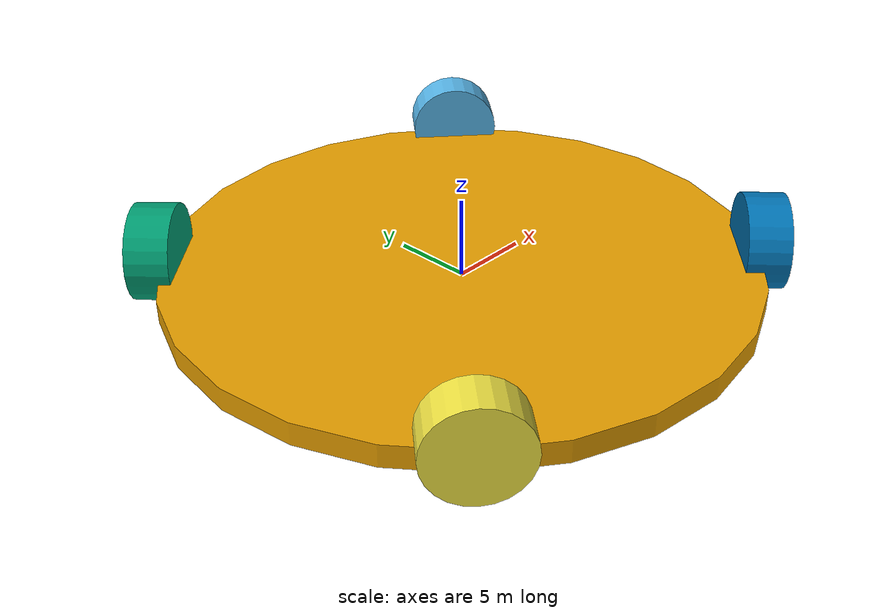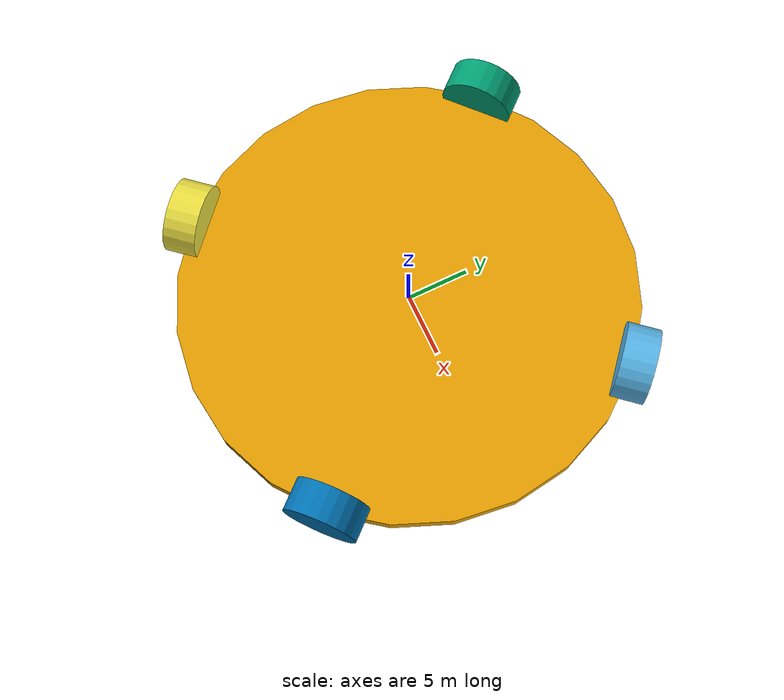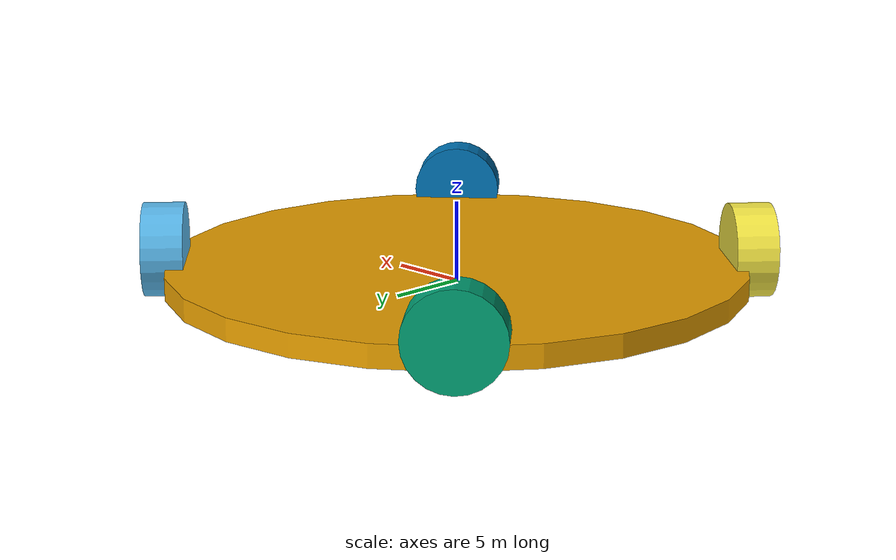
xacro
<?xml version="1.0"?>
<robot xmlns:xacro="http://ros.org/wiki/xacro" name="robot">

    <!-- Define properties for base and wheels -->
    <xacro:property name="base_radius" value="18"/>
    <xacro:property name="base_length" value="1.4"/>
    <xacro:property name="wheel_radius" value="2.9"/>
    <xacro:property name="wheel_length" value="2.56"/>
    <xacro:property name="wheel_offset" value="12.73"/>
    <xacro:property name="wheel_height" value="2.0"/>

    <!-- Base Link -->
    <link name="base_link">
        <visual>
            <geometry>
                <cylinder radius="${base_radius}" length="${base_length}"/>
            </geometry>
            <origin rpy="0 0 0" xyz="0 0 ${base_length / 2}"/>
        </visual>
    </link>

    <!-- Macro for creating wheels -->
    <xacro:macro name="wheel" params="wheel_name wheel_origin_xyz wheel_origin_rpy">
        <link name="${wheel_name}">
            <visual>
                <geometry>
                    <cylinder radius="${wheel_radius}" length="${wheel_length}"/>
                </geometry>
                <origin xyz="0 0 0" rpy="0 0 0"/>
            </visual>
        </link>

        <joint name="${wheel_name}-base" type="continuous">
            <parent link="base_link"/>
            <child link="${wheel_name}"/>
            <origin xyz="${wheel_origin_xyz}" rpy="${wheel_origin_rpy}"/>
            <axis xyz="0 0 1"/>
        </joint>
    </xacro:macro>

    <!-- Create four wheels using the wheel macro -->
    <xacro:wheel wheel_name="wheel1" wheel_origin_xyz="${wheel_offset} ${wheel_offset} ${wheel_height}" wheel_origin_rpy="-0.85 1.57 0"/>
    <xacro:wheel wheel_name="wheel2" wheel_origin_xyz="-${wheel_offset} ${wheel_offset} ${wheel_height}" wheel_origin_rpy="-0.85 -1.57 0"/>
    <xacro:wheel wheel_name="wheel3" wheel_origin_xyz="-${wheel_offset} -${wheel_offset} ${wheel_height}" wheel_origin_rpy="0.85 -1.57 0"/>
    <xacro:wheel wheel_name="wheel4" wheel_origin_xyz="${wheel_offset} -${wheel_offset} ${wheel_height}" wheel_origin_rpy="0.85 1.57 0"/>

</robot>
